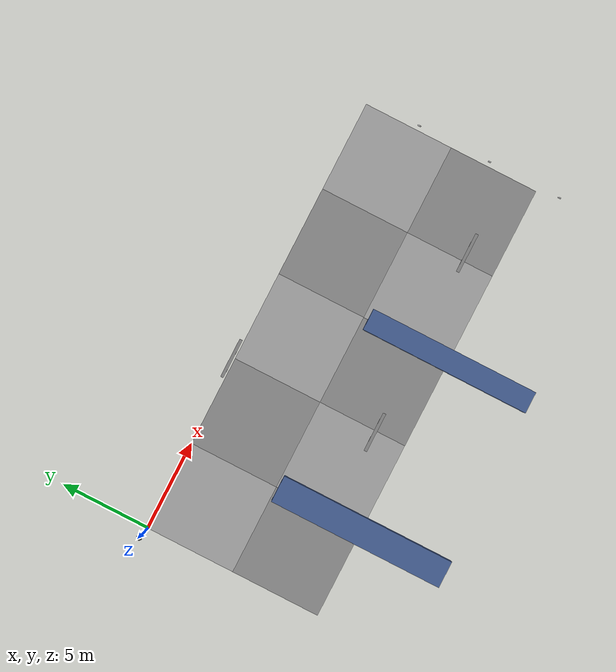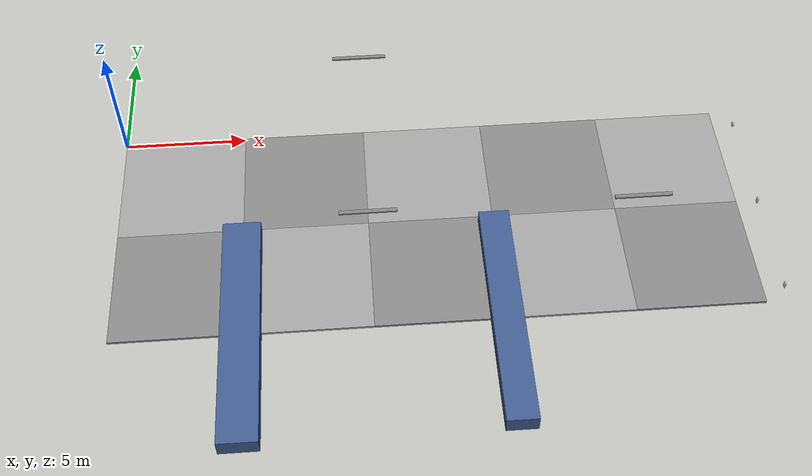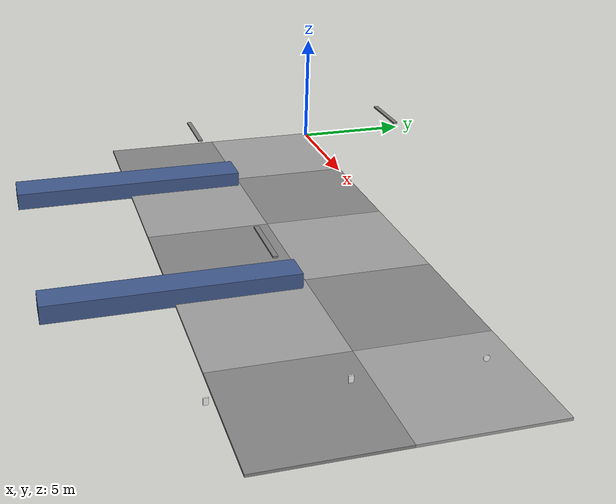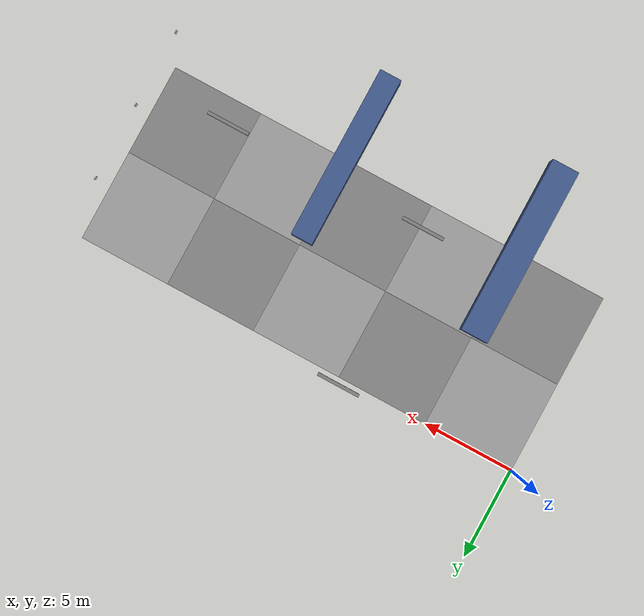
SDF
<sdf version="1.10">
 <world name="airport_terminal_world">
  <model name="vtile_5_3">
   <static>true</static>
   <pose>2.5 -7.5 0.05 0 0 0</pose>
   <link name="link">
    <visual name="vis">
     <geometry><box><size>5.0 5.0 0.1</size></box></geometry>
     <material><ambient>0.52 0.52 0.52 1.0</ambient><diffuse>0.52 0.52 0.52 1.0</diffuse></material>
    </visual>
   </link>
  </model>
  <model name="vtile_5_4">
   <static>true</static>
   <pose>2.5 -2.5 0.05 0 0 0</pose>
   <link name="link">
    <visual name="vis">
     <geometry><box><size>5.0 5.0 0.1</size></box></geometry>
     <material><ambient>0.62 0.62 0.62 1.0</ambient><diffuse>0.62 0.62 0.62 1.0</diffuse></material>
    </visual>
   </link>
  </model>
  <model name="vtile_6_3">
   <static>true</static>
   <pose>7.5 -7.5 0.05 0 0 0</pose>
   <link name="link">
    <visual name="vis">
     <geometry><box><size>5.0 5.0 0.1</size></box></geometry>
     <material><ambient>0.62 0.62 0.62 1.0</ambient><diffuse>0.62 0.62 0.62 1.0</diffuse></material>
    </visual>
   </link>
  </model>
  <model name="vtile_6_4">
   <static>true</static>
   <pose>7.5 -2.5 0.05 0 0 0</pose>
   <link name="link">
    <visual name="vis">
     <geometry><box><size>5.0 5.0 0.1</size></box></geometry>
     <material><ambient>0.52 0.52 0.52 1.0</ambient><diffuse>0.52 0.52 0.52 1.0</diffuse></material>
    </visual>
   </link>
  </model>
  <model name="vtile_7_3">
   <static>true</static>
   <pose>12.5 -7.5 0.05 0 0 0</pose>
   <link name="link">
    <visual name="vis">
     <geometry><box><size>5.0 5.0 0.1</size></box></geometry>
     <material><ambient>0.52 0.52 0.52 1.0</ambient><diffuse>0.52 0.52 0.52 1.0</diffuse></material>
    </visual>
   </link>
  </model>
  <model name="vtile_7_4">
   <static>true</static>
   <pose>12.5 -2.5 0.05 0 0 0</pose>
   <link name="link">
    <visual name="vis">
     <geometry><box><size>5.0 5.0 0.1</size></box></geometry>
     <material><ambient>0.62 0.62 0.62 1.0</ambient><diffuse>0.62 0.62 0.62 1.0</diffuse></material>
    </visual>
   </link>
  </model>
  <model name="vtile_8_3">
   <static>true</static>
   <pose>17.5 -7.5 0.05 0 0 0</pose>
   <link name="link">
    <visual name="vis">
     <geometry><box><size>5.0 5.0 0.1</size></box></geometry>
     <material><ambient>0.62 0.62 0.62 1.0</ambient><diffuse>0.62 0.62 0.62 1.0</diffuse></material>
    </visual>
   </link>
  </model>
  <model name="vtile_8_4">
   <static>true</static>
   <pose>17.5 -2.5 0.05 0 0 0</pose>
   <link name="link">
    <visual name="vis">
     <geometry><box><size>5.0 5.0 0.1</size></box></geometry>
     <material><ambient>0.52 0.52 0.52 1.0</ambient><diffuse>0.52 0.52 0.52 1.0</diffuse></material>
    </visual>
   </link>
  </model>
  <model name="vtile_9_3">
   <static>true</static>
   <pose>22.5 -7.5 0.05 0 0 0</pose>
   <link name="link">
    <visual name="vis">
     <geometry><box><size>5.0 5.0 0.1</size></box></geometry>
     <material><ambient>0.52 0.52 0.52 1.0</ambient><diffuse>0.52 0.52 0.52 1.0</diffuse></material>
    </visual>
   </link>
  </model>
  <model name="vtile_9_4">
   <static>true</static>
   <pose>22.5 -2.5 0.05 0 0 0</pose>
   <link name="link">
    <visual name="vis">
     <geometry><box><size>5.0 5.0 0.1</size></box></geometry>
     <material><ambient>0.62 0.62 0.62 1.0</ambient><diffuse>0.62 0.62 0.62 1.0</diffuse></material>
    </visual>
   </link>
  </model>
  <model name="toilet_women_sign_icon">
   <static>true</static>
   <pose>24.85 -11.0 2.55 0 0 0</pose>
   <link name="link">
    <visual name="vis">
     <geometry><box><size>0.04 0.15 0.22</size></box></geometry>
     <material><ambient>0.95 0.95 0.95 1.0</ambient><diffuse>0.95 0.95 0.95 1.0</diffuse></material>
    </visual>
   </link>
  </model>
  <model name="toilet_men_sign_icon">
   <static>true</static>
   <pose>24.85 -7.0 2.55 0 0 0</pose>
   <link name="link">
    <visual name="vis">
     <geometry><box><size>0.04 0.15 0.22</size></box></geometry>
     <material><ambient>0.95 0.95 0.95 1.0</ambient><diffuse>0.95 0.95 0.95 1.0</diffuse></material>
    </visual>
   </link>
  </model>
  <model name="toilet_acc_sign_icon">
   <static>true</static>
   <pose>24.85 -3.0 2.55 0 1.5708 0</pose>
   <link name="link">
    <visual name="vis">
     <geometry><cylinder><radius>0.1</radius><length>0.04</length></cylinder></geometry>
     <material><ambient>0.95 0.95 0.95 1.0</ambient><diffuse>0.95 0.95 0.95 1.0</diffuse></material>
    </visual>
   </link>
  </model>
  <model name="lamp_a_10_strip">
   <static>true</static>
   <pose>10.0 -8.0 4.42 0 0 0</pose>
   <link name="link">
    <visual name="strip">
     <geometry><box><size>2.0 0.12 0.04</size></box></geometry>
     <material>
      <ambient>0.95 0.95 0.88 1.0</ambient>
      <diffuse>0.95 0.95 0.88 1.0</diffuse>
      <emissive>0.35 0.35 0.3 1.0</emissive>
     </material>
    </visual>
    <visual name="housing">
     <pose>0 0 0.03 0 0 0</pose>
     <geometry><box><size>2.1 0.16 0.06</size></box></geometry>
     <material><ambient>0.5 0.5 0.5 1.0</ambient><diffuse>0.5 0.5 0.5 1.0</diffuse></material>
    </visual>
   </link>
  </model>
  <model name="lamp_a_20_strip">
   <static>true</static>
   <pose>20.0 -8.0 4.42 0 0 0</pose>
   <link name="link">
    <visual name="strip">
     <geometry><box><size>2.0 0.12 0.04</size></box></geometry>
     <material>
      <ambient>0.95 0.95 0.88 1.0</ambient>
      <diffuse>0.95 0.95 0.88 1.0</diffuse>
      <emissive>0.35 0.35 0.3 1.0</emissive>
     </material>
    </visual>
    <visual name="housing">
     <pose>0 0 0.03 0 0 0</pose>
     <geometry><box><size>2.1 0.16 0.06</size></box></geometry>
     <material><ambient>0.5 0.5 0.5 1.0</ambient><diffuse>0.5 0.5 0.5 1.0</diffuse></material>
    </visual>
   </link>
  </model>
  <model name="lamp_b_10_strip">
   <static>true</static>
   <pose>10.0 0 4.42 0 0 0</pose>
   <link name="link">
    <visual name="strip">
     <geometry><box><size>2.0 0.12 0.04</size></box></geometry>
     <material>
      <ambient>0.95 0.95 0.88 1.0</ambient>
      <diffuse>0.95 0.95 0.88 1.0</diffuse>
      <emissive>0.35 0.35 0.3 1.0</emissive>
     </material>
    </visual>
    <visual name="housing">
     <pose>0 0 0.03 0 0 0</pose>
     <geometry><box><size>2.1 0.16 0.06</size></box></geometry>
     <material><ambient>0.5 0.5 0.5 1.0</ambient><diffuse>0.5 0.5 0.5 1.0</diffuse></material>
    </visual>
   </link>
  </model>
  <model name="camera_center_dome">
   <static>true</static>
   <pose>0 0 4.38 0 0 0</pose>
   <link name="link">
    <visual name="dome_body">
     <geometry><sphere><radius>0.14</radius></sphere></geometry>
     <material><ambient>0.08 0.08 0.08 1.0</ambient><diffuse>0.08 0.08 0.08 1.0</diffuse></material>
    </visual>
    <visual name="dome_ring">
     <pose>0 0 0.02 0 0 0</pose>
     <geometry><cylinder><radius>0.15</radius><length>0.03</length></cylinder></geometry>
     <material><ambient>0.2 0.2 0.2 1.0</ambient><diffuse>0.2 0.2 0.2 1.0</diffuse></material>
    </visual>
    <visual name="dome_mount">
     <pose>0 0 0.16 0 0 0</pose>
     <geometry><cylinder><radius>0.04</radius><length>0.1</length></cylinder></geometry>
     <material><ambient>0.15 0.15 0.15 1.0</ambient><diffuse>0.15 0.15 0.15 1.0</diffuse></material>
    </visual>
    <sensor name="camera_center_down" type="camera">
     <pose>0 0 0 0 1.5708 0</pose>
     <topic>/surveillance/center/down</topic>
     <update_rate>10.0</update_rate>
     <camera>
      <horizontal_fov>1.5708</horizontal_fov>
      <image><width>1280.0</width><height>720.0</height></image>
      <clip><near>0.1</near><far>70.0</far></clip>
     </camera>
     <always_on>false</always_on>
     <visualize>false</visualize>
    </sensor>
    <sensor name="camera_center_north" type="camera">
     <pose>0 0 0 0 0.7854 0</pose>
     <topic>/surveillance/center/north</topic>
     <update_rate>10.0</update_rate>
     <camera>
      <horizontal_fov>1.7708</horizontal_fov>
      <image><width>1280.0</width><height>720.0</height></image>
      <clip><near>0.1</near><far>70.0</far></clip>
     </camera>
     <always_on>false</always_on>
     <visualize>false</visualize>
    </sensor>
    <sensor name="camera_center_south" type="camera">
     <pose>0 0 0 0 0.7854 3.1416</pose>
     <topic>/surveillance/center/south</topic>
     <update_rate>10.0</update_rate>
     <camera>
      <horizontal_fov>1.7708</horizontal_fov>
      <image><width>1280.0</width><height>720.0</height></image>
      <clip><near>0.1</near><far>70.0</far></clip>
     </camera>
     <always_on>false</always_on>
     <visualize>false</visualize>
    </sensor>
    <sensor name="camera_center_east" type="camera">
     <pose>0 0 0 0 0.7854 -1.5708</pose>
     <topic>/surveillance/center/east</topic>
     <update_rate>10.0</update_rate>
     <camera>
      <horizontal_fov>1.7708</horizontal_fov>
      <image><width>1280.0</width><height>720.0</height></image>
      <clip><near>0.1</near><far>70.0</far></clip>
     </camera>
     <always_on>false</always_on>
     <visualize>false</visualize>
    </sensor>
    <sensor name="camera_center_west" type="camera">
     <pose>0 0 0 0 0.7854 1.5708</pose>
     <topic>/surveillance/center/west</topic>
     <update_rate>10.0</update_rate>
     <camera>
      <horizontal_fov>1.7708</horizontal_fov>
      <image><width>1280.0</width><height>720.0</height></image>
      <clip><near>0.1</near><far>70.0</far></clip>
     </camera>
     <always_on>false</always_on>
     <visualize>false</visualize>
    </sensor>
   </link>
  </model>
  <model name="cluster_2_bench">
   <static>true</static>
   <pose>5.0 -10.0 0.35 0.0 0.0 0.0</pose>
   <link name="link">
    <collision name="col"><geometry><box><size>1.5 9.8 0.7</size></box></geometry></collision>
    <visual name="vis">
     <geometry><box><size>1.5 9.8 0.7</size></box></geometry>
     <material><ambient>0.25 0.35 0.55 1.0</ambient><diffuse>0.25 0.35 0.55 1.0</diffuse></material>
    </visual>
   </link>
  </model>
  <model name="cluster_3_bench">
   <static>true</static>
   <pose>15.0 -10.0 0.35 0.0 0.0 0.0</pose>
   <link name="link">
    <collision name="col"><geometry><box><size>1.2 9.5 0.7</size></box></geometry></collision>
    <visual name="vis">
     <geometry><box><size>1.2 9.5 0.7</size></box></geometry>
     <material><ambient>0.25 0.35 0.55 1.0</ambient><diffuse>0.25 0.35 0.55 1.0</diffuse></material>
    </visual>
   </link>
  </model>
 </world>
</sdf>
